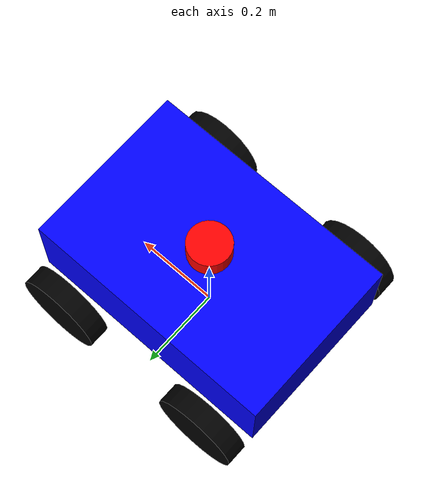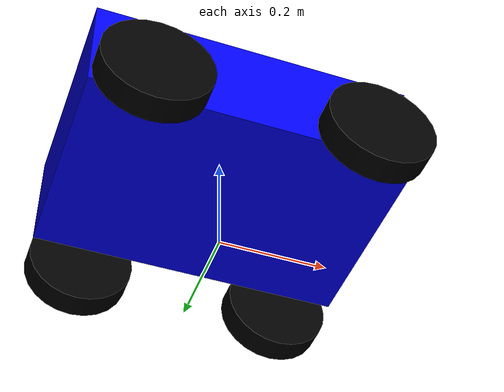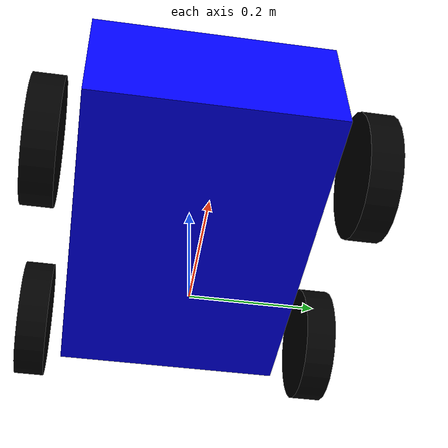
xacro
<?xml version="1.0"?>
<robot xmlns:xacro="http://www.ros.org/wiki/xacro" name="ika_robot">

  <link name="base_footprint"/>

  <joint name="base_footprint_joint" type="fixed">
    <parent link="base_footprint"/>
    <child link="base_link"/>
    <origin xyz="0 0 0.2" rpy="0 0 0"/>
  </joint>

  <link name="base_link">
    <visual>
      <geometry>
        <box size="0.6 0.4 0.2"/>
      </geometry>
      <material name="blue">
        <color rgba="0 0 1 1"/>
      </material>
    </visual>
    <collision>
      <geometry>
        <box size="0.6 0.4 0.2"/>
      </geometry>
    </collision>
    <inertial>
      <mass value="10.0"/>
      <inertia ixx="0.1" ixy="0" ixz="0" iyy="0.1" iyz="0" izz="0.1"/>
    </inertial>
  </link>

  <xacro:macro name="wheel" params="prefix x_reflect y_reflect">
    <link name="${prefix}_wheel">
      <visual>
        <origin xyz="0 0 0" rpy="${pi/2} 0 0"/>
        <geometry>
          <cylinder radius="0.1" length="0.05"/>
        </geometry>
        <material name="black">
          <color rgba="0 0 0 1"/>
        </material>
      </visual>
      <collision>
        <origin xyz="0 0 0" rpy="${pi/2} 0 0"/>
        <geometry>
          <cylinder radius="0.1" length="0.05"/>
        </geometry>
      </collision>
      <inertial>
        <mass value="0.5"/>
        <inertia ixx="0.01" ixy="0" ixz="0" iyy="0.01" iyz="0" izz="0.01"/>
      </inertial>
    </link>

    <joint name="${prefix}_wheel_joint" type="continuous">
      <parent link="base_link"/>
      <child link="${prefix}_wheel"/>
      <origin xyz="${x_reflect*0.2} ${y_reflect*0.25} -0.1" rpy="0 0 0"/>
      <axis xyz="0 1 0"/>
    </joint>

    <gazebo reference="${prefix}_wheel">
      <material>Gazebo/Black</material>
      <mu1 value="1.0"/>
      <mu2 value="1.0"/>
    </gazebo>
  </xacro:macro>

  <xacro:wheel prefix="front_left"  x_reflect="1"  y_reflect="1" />
  <xacro:wheel prefix="front_right" x_reflect="1"  y_reflect="-1" />
  <xacro:wheel prefix="back_left"   x_reflect="-1" y_reflect="1" />
  <xacro:wheel prefix="back_right"  x_reflect="-1" y_reflect="-1" />

  <gazebo reference="base_link">
    <material>Gazebo/Blue</material>
  </gazebo>

  <gazebo>
    <plugin name="diff_drive" filename="libgazebo_ros_diff_drive.so">

      <num_wheel_pairs>2</num_wheel_pairs>

      <left_joint>front_left_wheel_joint</left_joint>
      <right_joint>front_right_wheel_joint</right_joint>

      <left_joint>back_left_wheel_joint</left_joint>
      <right_joint>back_right_wheel_joint</right_joint>

      <wheel_separation>0.5</wheel_separation>
      <wheel_separation>0.5</wheel_separation>
      <wheel_diameter>0.2</wheel_diameter>
      <wheel_diameter>0.2</wheel_diameter>

      <max_wheel_torque>200</max_wheel_torque>
      <max_wheel_acceleration>1.0</max_wheel_acceleration>

      <command_topic>cmd_vel</command_topic>
      <odometry_topic>odom</odometry_topic>
      <odometry_frame>odom</odometry_frame>
      <robot_base_frame>base_footprint</robot_base_frame>

      <publish_odom>true</publish_odom>
      <publish_odom_tf>true</publish_odom_tf>
      <publish_wheel_tf>true</publish_wheel_tf>
    </plugin>
  </gazebo>
  <link name="lidar_link">
    <visual>
      <geometry>
        <cylinder radius="0.05" length="0.05"/>
      </geometry>
      <material name="red">
        <color rgba="1 0 0 1"/>
      </material>
    </visual>
    <collision>
      <geometry>
        <cylinder radius="0.05" length="0.05"/>
      </geometry>
    </collision>
    <inertial>
      <mass value="0.1"/>
      <inertia ixx="0.001" ixy="0" ixz="0" iyy="0.001" iyz="0" izz="0.001"/>
    </inertial>
  </link>

  <joint name="lidar_joint" type="fixed">
    <parent link="base_link"/>
    <child link="lidar_link"/>
    <origin xyz="0 0 0.125" rpy="0 0 0"/>
  </joint>

  <gazebo reference="lidar_link">
    <material>Gazebo/Red</material>
    <sensor name="lidar_sensor" type="ray">
      <pose>0 0 0 0 0 0</pose>
      <visualize>true</visualize> <update_rate>10</update_rate> <ray>
        <scan>
          <horizontal>
            <samples>360</samples> <resolution>1</resolution>
            <min_angle>-3.14159</min_angle>
            <max_angle>3.14159</max_angle>
          </horizontal>
        </scan>
        <range>
          <min>0.15</min> <max>10.0</max> <resolution>0.01</resolution>
        </range>
      </ray>
      <plugin name="lidar_plugin" filename="libgazebo_ros_ray_sensor.so">
        <ros>
          <remapping>~/out:=scan</remapping>
        </ros>
        <output_type>sensor_msgs/LaserScan</output_type>
        <frame_name>lidar_link</frame_name>
      </plugin>
    </sensor>
  </gazebo>
</robot>
